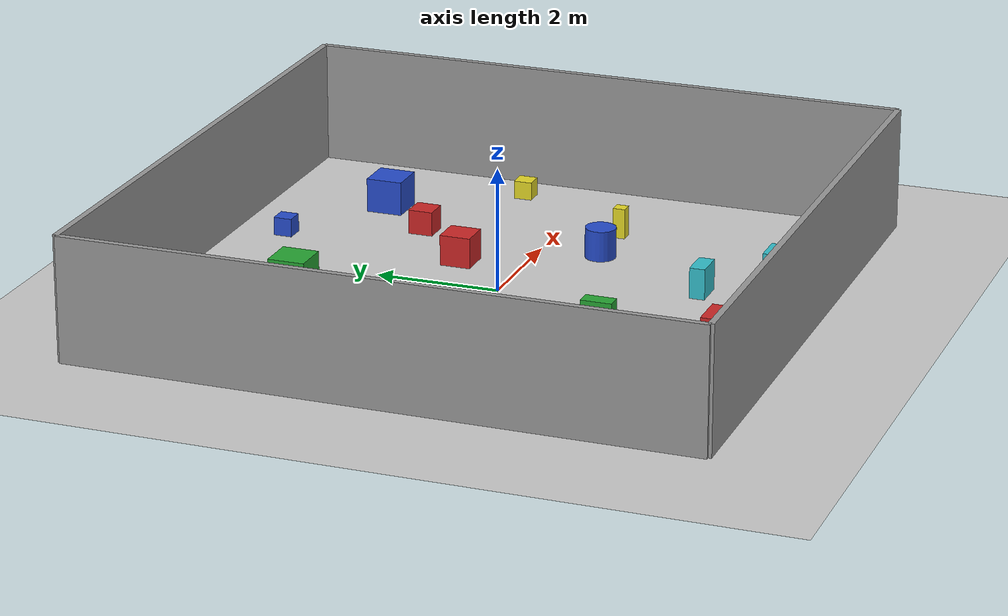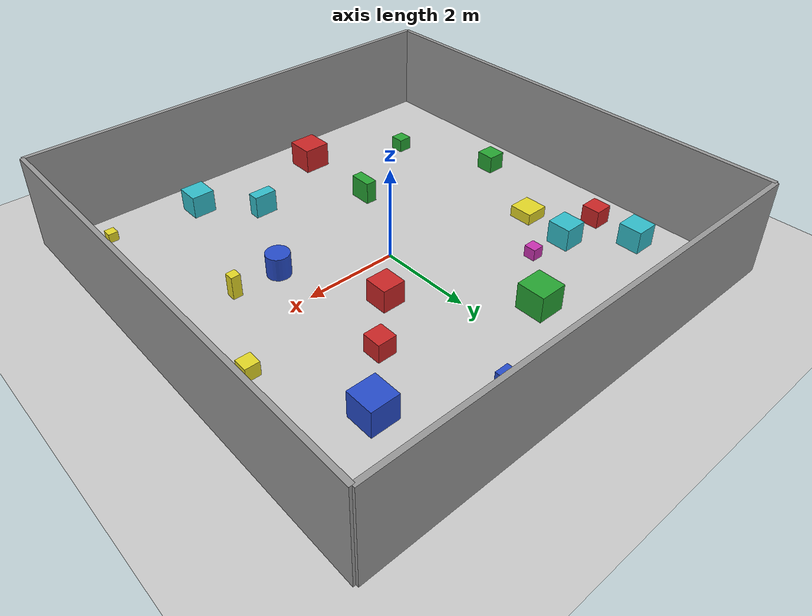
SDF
<?xml version="1.0" ?>
<sdf version="1.6">
  <world name="room_with_obstacles">
    <include>
      <uri>model://sun</uri>
    </include>
    <include>
      <uri>model://ground_plane</uri>
    </include>

    <!-- Room Walls (Connected) -->
    <model name="wall1">
      <pose>0 5 1 0 0 0</pose>
      <link name="link">
        <collision name="collision">
          <geometry>
            <box>
              <size>10 0.1 2</size>
            </box>
          </geometry>
        </collision>
        <visual name="visual">
          <geometry>
            <box>
              <size>10 0.1 2</size>
            </box>
          </geometry>
          <material>
            <script>
              <uri>file://media/materials/scripts/gazebo.material</uri>
              <name>Gazebo/Gray</name>
            </script>
          </material>
        </visual>
      </link>
    </model>

    <model name="wall2">
      <pose>5 0 1 0 0 1.5708</pose>
      <link name="link">
        <collision name="collision">
          <geometry>
            <box>
              <size>10 0.1 2</size>
            </box>
          </geometry>
        </collision>
        <visual name="visual">
          <geometry>
            <box>
              <size>10 0.1 2</size>
            </box>
          </geometry>
          <material>
            <script>
              <uri>file://media/materials/scripts/gazebo.material</uri>
              <name>Gazebo/Gray</name>
            </script>
          </material>
        </visual>
      </link>
    </model>

    <model name="wall3">
      <pose>0 -5 1 0 0 0</pose>
      <link name="link">
        <collision name="collision">
          <geometry>
            <box>
              <size>10 0.1 2</size>
            </box>
          </geometry>
        </collision>
        <visual name="visual">
          <geometry>
            <box>
              <size>10 0.1 2</size>
            </box>
          </geometry>
          <material>
            <script>
              <uri>file://media/materials/scripts/gazebo.material</uri>
              <name>Gazebo/Gray</name>
            </script>
          </material>
        </visual>
      </link>
    </model>

    <model name="wall4">
      <pose>-5 0 1 0 0 -1.5708</pose>
      <link name="link">
        <collision name="collision">
          <geometry>
            <box>
              <size>10 0.1 2</size>
            </box>
          </geometry>
        </collision>
        <visual name="visual">
          <geometry>
            <box>
              <size>10 0.1 2</size>
            </box>
          </geometry>
          <material>
            <script>
              <uri>file://media/materials/scripts/gazebo.material</uri>
              <name>Gazebo/Gray</name>
            </script>
          </material>
        </visual>
      </link>
    </model>

    <!-- Initial Obstacles -->
    <model name="obstacle1">
      <pose>1 1 0.25 0 0 0</pose>
      <link name="link">
        <collision name="collision">
          <geometry>
            <box>
              <size>0.5 0.5 0.5</size>
            </box>
          </geometry>
        </collision>
        <visual name="visual">
          <geometry>
            <box>
              <size>0.5 0.5 0.5</size>
            </box>
          </geometry>
          <material>
            <script>
              <uri>file://media/materials/scripts/gazebo.material</uri>
              <name>Gazebo/Red</name>
            </script>
          </material>
        </visual>
      </link>
    </model>

    <model name="obstacle2">
      <pose>2 -1 0.25 0 0 0</pose>
      <link name="link">
        <collision name="collision">
          <geometry>
            <cylinder>
              <radius>0.25</radius>
              <length>0.5</length>
            </cylinder>
          </geometry>
        </collision>
        <visual name="visual">
          <geometry>
            <cylinder>
              <radius>0.25</radius>
              <length>0.5</length>
            </cylinder>
          </geometry>
          <material>
            <script>
              <uri>file://media/materials/scripts/gazebo.material</uri>
              <name>Gazebo/Blue</name>
            </script>
          </material>
        </visual>
      </link>
    </model>

    <model name="obstacle3">
      <pose>-1 -2 0.25 0 0 0</pose>
      <link name="link">
        <collision name="collision">
          <geometry>
            <box>
              <size>0.25 0.5 0.5</size>
            </box>
          </geometry>
        </collision>
        <visual name="visual">
          <geometry>
            <box>
              <size>0.25 0.5 0.5</size>
            </box>
          </geometry>
          <material>
            <script>
              <uri>file://media/materials/scripts/gazebo.material</uri>
              <name>Gazebo/Green</name>
            </script>
          </material>
        </visual>
      </link>
    </model>

    <model name="obstacle4">
      <pose>-3 1 0.25 0 0 0</pose>
      <link name="link">
        <collision name="collision">
          <geometry>
            <box>
              <size>0.5 0.5 0.25</size>
            </box>
          </geometry>
        </collision>
        <visual name="visual">
          <geometry>
            <box>
              <size>0.5 0.5 0.25</size>
            </box>
          </geometry>
          <material>
            <script>
              <uri>file://media/materials/scripts/gazebo.material</uri>
              <name>Gazebo/Yellow</name>
            </script>
          </material>
        </visual>
      </link>
    </model>

    <model name="obstacle5">
      <pose>1 -3 0.25 0 0 0</pose>
      <link name="link">
        <collision name="collision">
          <geometry>
            <box>
              <size>0.5 0.25 0.5</size>
            </box>
          </geometry>
        </collision>
        <visual name="visual">
          <geometry>
            <box>
              <size>0.5 0.25 0.5</size>
            </box>
          </geometry>
          <material>
            <script>
              <uri>file://media/materials/scripts/gazebo.material</uri>
              <name>Gazebo/Cyan</name>
            </script>
          </material>
        </visual>
      </link>
    </model>

    <model name="obstacle6">
      <pose>-2 2 0.25 0 0 0</pose>
      <link name="link">
        <collision name="collision">
          <geometry>
            <box>
              <size>0.25 0.25 0.25</size>
            </box>
          </geometry>
        </collision>
        <visual name="visual">
          <geometry>
            <box>
              <size>0.25 0.25 0.25</size>
            </box>
          </geometry>
          <material>
            <script>
              <uri>file://media/materials/scripts/gazebo.material</uri>
              <name>Gazebo/Magenta</name>
            </script>
          </material>
        </visual>
      </link>
    </model>

    <!-- Additional Random Obstacles -->
    <model name="obstacle7">
      <pose>-4 2 0.25 0 0 0</pose>
      <link name="link">
        <collision name="collision">
          <geometry>
            <box>
              <size>0.4 0.4 0.4</size>
            </box>
          </geometry>
        </collision>
        <visual name="visual">
          <geometry>
            <box>
              <size>0.4 0.4 0.4</size>
            </box>
          </geometry>
          <material>
            <script>
              <uri>file://media/materials/scripts/gazebo.material</uri>
              <name>Gazebo/Red</name>
            </script>
          </material>
        </visual>
      </link>
    </model>

    <model name="obstacle8">
      <pose>3 3 0.25 0 0 0</pose>
      <link name="link">
        <collision name="collision">
          <geometry>
            <box>
              <size>0.6 0.6 0.6</size>
            </box>
          </geometry>
        </collision>
        <visual name="visual">
          <geometry>
            <box>
              <size>0.6 0.6 0.6</size>
            </box>
          </geometry>
          <material>
            <script>
              <uri>file://media/materials/scripts/gazebo.material</uri>
              <name>Gazebo/Blue</name>
            </script>
          </material>
        </visual>
      </link>
    </model>

    <model name="obstacle9">
      <pose>-3 -3 0.25 0 0 0</pose>
      <link name="link">
        <collision name="collision">
          <geometry>
            <box>
              <size>0.3 0.3 0.3</size>
            </box>
          </geometry>
        </collision>
        <visual name="visual">
          <geometry>
            <box>
              <size>0.3 0.3 0.3</size>
            </box>
          </geometry>
          <material>
            <script>
              <uri>file://media/materials/scripts/gazebo.material</uri>
              <name>Gazebo/Green</name>
            </script>
          </material>
        </visual>
      </link>
    </model>

    <model name="obstacle10">
      <pose>4 -4 0.25 0 0 0</pose>
      <link name="link">
        <collision name="collision">
          <geometry>
            <box>
              <size>0.2 0.2 0.7</size>
            </box>
          </geometry>
        </collision>
        <visual name="visual">
          <geometry>
            <box>
              <size>0.2 0.2 0.2</size>
            </box>
          </geometry>
          <material>
            <script>
              <uri>file://media/materials/scripts/gazebo.material</uri>
              <name>Gazebo/Yellow</name>
            </script>
          </material>
        </visual>
      </link>
    </model>

    <model name="obstacle11">
      <pose>2 -4 0.25 0 0 0</pose>
      <link name="link">
        <collision name="collision">
          <geometry>
            <box>
              <size>0.5 0.5 0.5</size>
            </box>
          </geometry>
        </collision>
        <visual name="visual">
          <geometry>
            <box>
              <size>0.5 0.5 0.5</size>
            </box>
          </geometry>
          <material>
            <script>
              <uri>file://media/materials/scripts/gazebo.material</uri>
              <name>Gazebo/Cyan</name>
            </script>
          </material>
        </visual>
      </link>
    </model>

    <model name="obstacle12">
      <pose>-1 -4 0.25 0 0 0</pose>
      <link name="link">
        <collision name="collision">
          <geometry>
            <box>
              <size>0.6 0.6 0.6</size>
            </box>
          </geometry>
        </collision>
        <visual name="visual">
          <geometry>
            <box>
              <size>0.6 0.6 0.6</size>
            </box>
          </geometry>
          <material>
            <script>
              <uri>file://media/materials/scripts/gazebo.material</uri>
              <name>Gazebo/Red</name>
            </script>
          </material>
        </visual>
      </link>
    </model>

    <model name="obstacle13">
      <pose>1 4 0.25 0 0 0</pose>
      <link name="link">
        <collision name="collision">
          <geometry>
            <box>
              <size>0.3 0.3 0.3</size>
            </box>
          </geometry>
        </collision>
        <visual name="visual">
          <geometry>
            <box>
              <size>0.3 0.3 0.3</size>
            </box>
          </geometry>
          <material>
            <script>
              <uri>file://media/materials/scripts/gazebo.material</uri>
              <name>Gazebo/Blue</name>
            </script>
          </material>
        </visual>
      </link>
    </model>

    <model name="obstacle14">
      <pose>-4 -1 0.25 0 0 0</pose>
      <link name="link">
        <collision name="collision">
          <geometry>
            <box>
              <size>0.4 0.4 0.4</size>
            </box>
          </geometry>
        </collision>
        <visual name="visual">
          <geometry>
            <box>
              <size>0.4 0.4 0.4</size>
            </box>
          </geometry>
          <material>
            <script>
              <uri>file://media/materials/scripts/gazebo.material</uri>
              <name>Gazebo/Green</name>
            </script>
          </material>
        </visual>
      </link>
    </model>

    <model name="obstacle15">
      <pose>3 -1 0.25 0 0 0</pose>
      <link name="link">
        <collision name="collision">
          <geometry>
            <box>
              <size>0.2 0.2 0.2</size>
            </box>
          </geometry>
        </collision>
        <visual name="visual">
          <geometry>
            <box>
              <size>0.2 0.2 0.5</size>
            </box>
          </geometry>
          <material>
            <script>
              <uri>file://media/materials/scripts/gazebo.material</uri>
              <name>Gazebo/Yellow</name>
            </script>
          </material>
        </visual>
      </link>
    </model>

    <model name="obstacle16">
      <pose>-3 2 0.25 0 0 0</pose>
      <link name="link">
        <collision name="collision">
          <geometry>
            <box>
              <size>0.5 0.5 0.5</size>
            </box>
          </geometry>
        </collision>
        <visual name="visual">
          <geometry>
            <box>
              <size>0.5 0.5 0.5</size>
            </box>
          </geometry>
          <material>
            <script>
              <uri>file://media/materials/scripts/gazebo.material</uri>
              <name>Gazebo/Cyan</name>
            </script>
          </material>
        </visual>
      </link>
    </model>

    <model name="obstacle17">
      <pose>2 2 0.25 0 0 0</pose>
      <link name="link">
        <collision name="collision">
          <geometry>
            <box>
              <size>0.4 0.4 0.4</size>
            </box>
          </geometry>
        </collision>
        <visual name="visual">
          <geometry>
            <box>
              <size>0.4 0.4 0.4</size>
            </box>
          </geometry>
          <material>
            <script>
              <uri>file://media/materials/scripts/gazebo.material</uri>
              <name>Gazebo/Red</name>
            </script>
          </material>
        </visual>
      </link>
    </model>

    <model name="obstacle18">
      <pose>-1 3 0.25 0 0 0</pose>
      <link name="link">
        <collision name="collision">
          <geometry>
            <box>
              <size>0.6 0.6 0.6</size>
            </box>
          </geometry>
        </collision>
        <visual name="visual">
          <geometry>
            <box>
              <size>0.6 0.6 0.6</size>
            </box>
          </geometry>
          <material>
            <script>
              <uri>file://media/materials/scripts/gazebo.material</uri>
              <name>Gazebo/Green</name>
            </script>
          </material>
        </visual>
      </link>
    </model>

    <model name="obstacle19">
      <pose>4 1 0.25 0 0 0</pose>
      <link name="link">
        <collision name="collision">
          <geometry>
            <box>
              <size>0.3 0.3 0.3</size>
            </box>
          </geometry>
        </collision>
        <visual name="visual">
          <geometry>
            <box>
              <size>0.3 0.3 0.3</size>
            </box>
          </geometry>
            <material>
            <script>
              <uri>file://media/materials/scripts/gazebo.material</uri>
              <name>Gazebo/Yellow</name>
            </script>
          </material>
        </visual>
      </link>
    </model>

    <model name="obstacle20">
      <pose>-4 3 0.25 0 0 0</pose>
      <link name="link">
        <collision name="collision">
          <geometry>
            <box>
              <size>0.5 0.5 0.5</size>
            </box>
          </geometry>
        </collision>
        <visual name="visual">
          <geometry>
            <box>
              <size>0.5 0.5 0.5</size>
            </box>
          </geometry>
          <material>
            <script>
              <uri>file://media/materials/scripts/gazebo.material</uri>
              <name>Gazebo/Cyan</name>
            </script>
          </material>
        </visual>
      </link>
    </model>

  </world>
</sdf>
